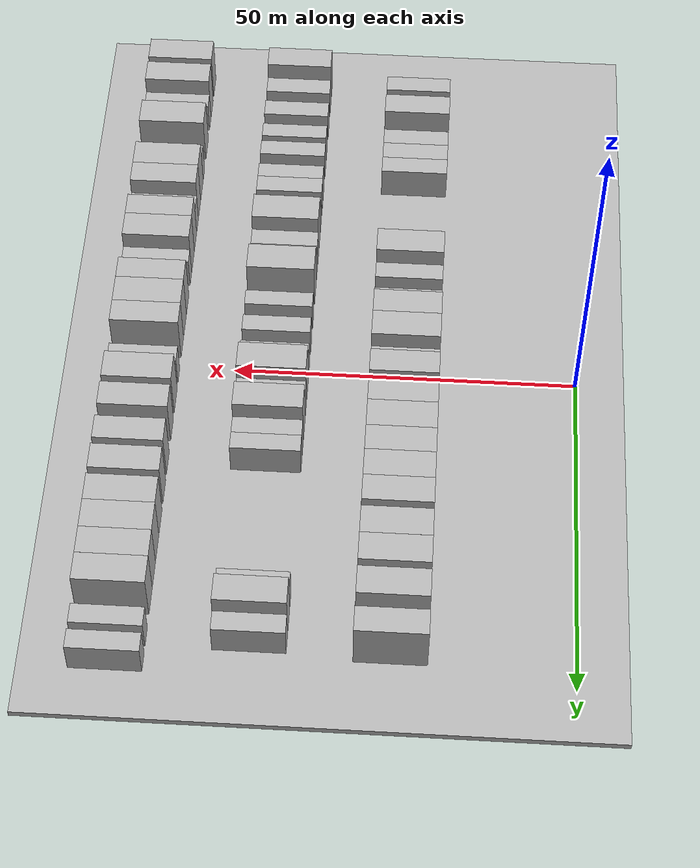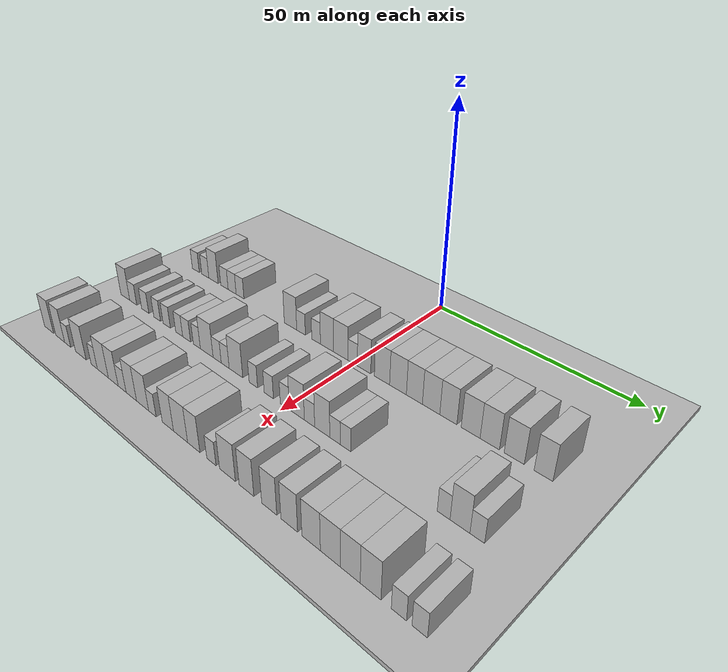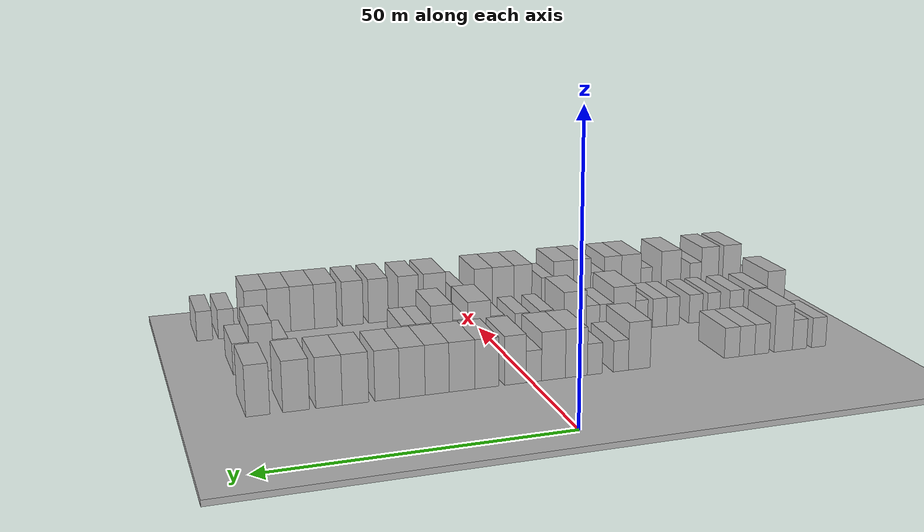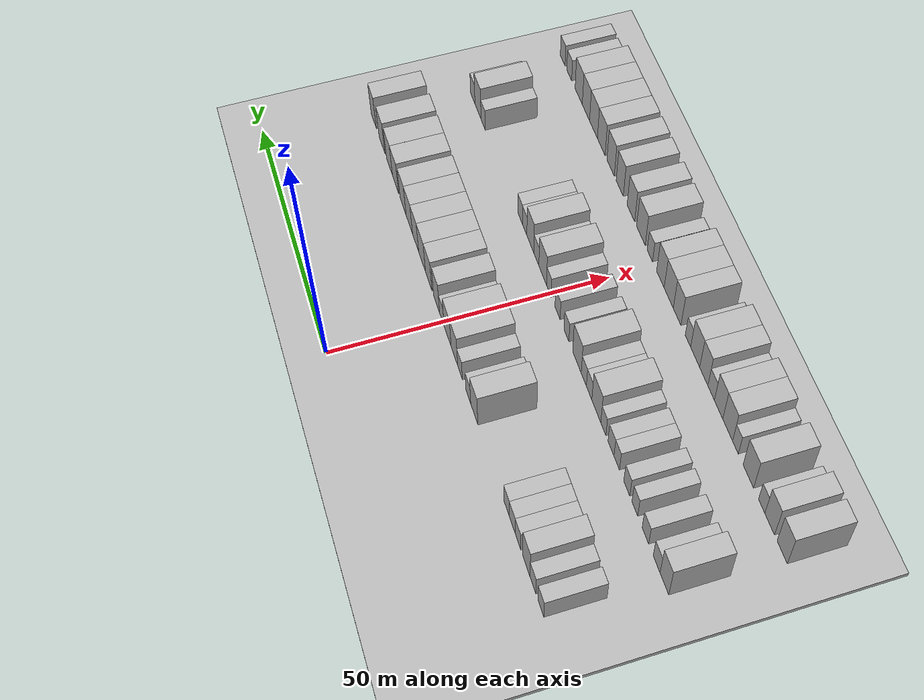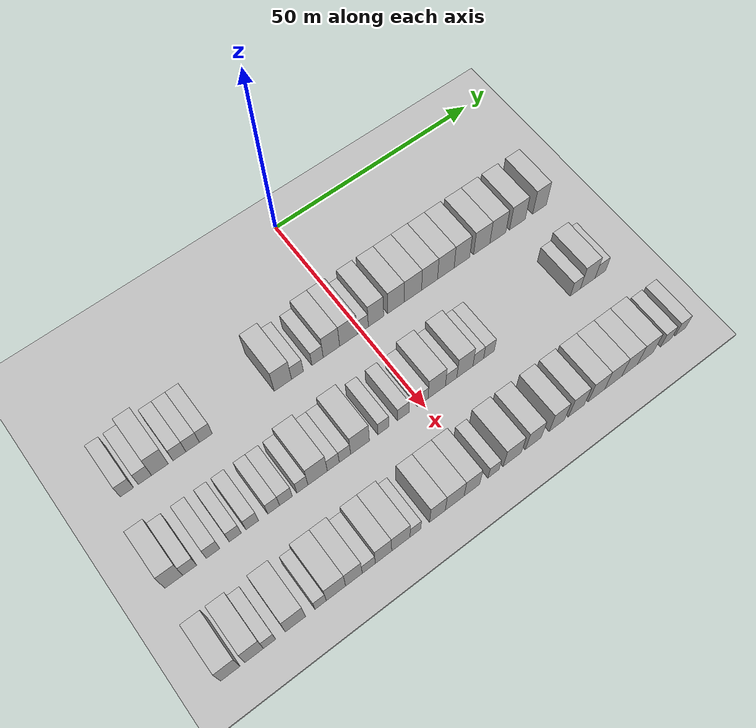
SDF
<sdf version="1.6">
 <world name="default">
  <include><name>ground_plane_1</name><uri>model://HANNAS_ground_plane</uri></include>
  <include>
   <name>ground_plane_2</name>
   <uri>model://HANNAS_ground_plane</uri>
   <pose>100 0 0  0 0 0</pose>
  </include>
  <model name="building_49">
   <static>1</static>
   <pose>25.0000 -53.5726 0 0.000000 0.000000 0.000000</pose>
   <link name="link">
    <pose>0 0 3.00 0 0 0</pose>
    <collision name="collision"><geometry><box><size>10.0000 2.8402 6.0000</size></box></geometry></collision>
    <visual name="visual">
     <cast_shadows>0</cast_shadows>
     <geometry><box><size>10.0000 2.8402 6.0000</size></box></geometry>
     <material>
      <script>
       <uri>model://HANNAS_wall/materials/scripts</uri>
       <uri>model://HANNAS_wall/materials/textures</uri>
       <name>vrc/HANNAS_wall</name>
      </script>
     </material>
    </visual>
   </link>
  </model>
  <model name="building_50">
   <static>1</static>
   <pose>25.0000 -49.7343 0 0.000000 0.000000 0.000000</pose>
   <link name="link">
    <pose>0 0 3.00 0 0 0</pose>
    <collision name="collision"><geometry><box><size>10.0000 2.8363 6.0000</size></box></geometry></collision>
    <visual name="visual">
     <cast_shadows>0</cast_shadows>
     <geometry><box><size>10.0000 2.8363 6.0000</size></box></geometry>
     <material>
      <script>
       <uri>model://HANNAS_wall/materials/scripts</uri>
       <uri>model://HANNAS_wall/materials/textures</uri>
       <name>vrc/HANNAS_wall</name>
      </script>
     </material>
    </visual>
   </link>
  </model>
  <model name="building_51">
   <static>1</static>
   <pose>25.0000 -46.4999 0 0.000000 0.000000 0.000000</pose>
   <link name="link">
    <pose>0 0 4.50 0 0 0</pose>
    <collision name="collision"><geometry><box><size>10.0000 3.6325 9.0000</size></box></geometry></collision>
    <visual name="visual">
     <cast_shadows>0</cast_shadows>
     <geometry><box><size>10.0000 3.6325 9.0000</size></box></geometry>
     <material>
      <script>
       <uri>model://HANNAS_wall/materials/scripts</uri>
       <uri>model://HANNAS_wall/materials/textures</uri>
       <name>vrc/HANNAS_wall</name>
      </script>
     </material>
    </visual>
   </link>
  </model>
  <model name="building_52">
   <static>1</static>
   <pose>25.0000 -42.2697 0 0.000000 0.000000 0.000000</pose>
   <link name="link">
    <pose>0 0 3.00 0 0 0</pose>
    <collision name="collision"><geometry><box><size>10.0000 2.8280 6.0000</size></box></geometry></collision>
    <visual name="visual">
     <cast_shadows>0</cast_shadows>
     <geometry><box><size>10.0000 2.8280 6.0000</size></box></geometry>
     <material>
      <script>
       <uri>model://HANNAS_wall/materials/scripts</uri>
       <uri>model://HANNAS_wall/materials/textures</uri>
       <name>vrc/HANNAS_wall</name>
      </script>
     </material>
    </visual>
   </link>
  </model>
  <model name="building_53">
   <static>1</static>
   <pose>25.0000 -39.3607 0 0.000000 0.000000 0.000000</pose>
   <link name="link">
    <pose>0 0 3.00 0 0 0</pose>
    <collision name="collision"><geometry><box><size>10.0000 2.9900 6.0000</size></box></geometry></collision>
    <visual name="visual">
     <cast_shadows>0</cast_shadows>
     <geometry><box><size>10.0000 2.9900 6.0000</size></box></geometry>
     <material>
      <script>
       <uri>model://HANNAS_wall/materials/scripts</uri>
       <uri>model://HANNAS_wall/materials/textures</uri>
       <name>vrc/HANNAS_wall</name>
      </script>
     </material>
    </visual>
   </link>
  </model>
  <model name="building_54">
   <static>1</static>
   <pose>25.0000 -36.4236 0 0.000000 0.000000 0.000000</pose>
   <link name="link">
    <pose>0 0 3.00 0 0 0</pose>
    <collision name="collision"><geometry><box><size>10.0000 2.8842 6.0000</size></box></geometry></collision>
    <visual name="visual">
     <cast_shadows>0</cast_shadows>
     <geometry><box><size>10.0000 2.8842 6.0000</size></box></geometry>
     <material>
      <script>
       <uri>model://HANNAS_wall/materials/scripts</uri>
       <uri>model://HANNAS_wall/materials/textures</uri>
       <name>vrc/HANNAS_wall</name>
      </script>
     </material>
    </visual>
   </link>
  </model>
  <model name="building_55">
   <static>1</static>
   <pose>25.0000 -18.9226 0 0.000000 0.000000 0.000000</pose>
   <link name="link">
    <pose>0 0 4.50 0 0 0</pose>
    <collision name="collision"><geometry><box><size>10.0000 4.0393 9.0000</size></box></geometry></collision>
    <visual name="visual">
     <cast_shadows>0</cast_shadows>
     <geometry><box><size>10.0000 4.0393 9.0000</size></box></geometry>
     <material>
      <script>
       <uri>model://HANNAS_wall/materials/scripts</uri>
       <uri>model://HANNAS_wall/materials/textures</uri>
       <name>vrc/HANNAS_wall</name>
      </script>
     </material>
    </visual>
   </link>
  </model>
  <model name="building_56">
   <static>1</static>
   <pose>25.0000 -15.5169 0 0.000000 0.000000 0.000000</pose>
   <link name="link">
    <pose>0 0 3.00 0 0 0</pose>
    <collision name="collision"><geometry><box><size>10.0000 2.7720 6.0000</size></box></geometry></collision>
    <visual name="visual">
     <cast_shadows>0</cast_shadows>
     <geometry><box><size>10.0000 2.7720 6.0000</size></box></geometry>
     <material>
      <script>
       <uri>model://HANNAS_wall/materials/scripts</uri>
       <uri>model://HANNAS_wall/materials/textures</uri>
       <name>vrc/HANNAS_wall</name>
      </script>
     </material>
    </visual>
   </link>
  </model>
  <model name="building_57">
   <static>1</static>
   <pose>25.0000 -10.7822 0 0.000000 0.000000 0.000000</pose>
   <link name="link">
    <pose>0 0 3.00 0 0 0</pose>
    <collision name="collision"><geometry><box><size>10.0000 2.6976 6.0000</size></box></geometry></collision>
    <visual name="visual">
     <cast_shadows>0</cast_shadows>
     <geometry><box><size>10.0000 2.6976 6.0000</size></box></geometry>
     <material>
      <script>
       <uri>model://HANNAS_wall/materials/scripts</uri>
       <uri>model://HANNAS_wall/materials/textures</uri>
       <name>vrc/HANNAS_wall</name>
      </script>
     </material>
    </visual>
   </link>
  </model>
  <model name="building_58">
   <static>1</static>
   <pose>25.0000 -7.4671 0 0.000000 0.000000 0.000000</pose>
   <link name="link">
    <pose>0 0 4.50 0 0 0</pose>
    <collision name="collision"><geometry><box><size>10.0000 3.9326 9.0000</size></box></geometry></collision>
    <visual name="visual">
     <cast_shadows>0</cast_shadows>
     <geometry><box><size>10.0000 3.9326 9.0000</size></box></geometry>
     <material>
      <script>
       <uri>model://HANNAS_wall/materials/scripts</uri>
       <uri>model://HANNAS_wall/materials/textures</uri>
       <name>vrc/HANNAS_wall</name>
      </script>
     </material>
    </visual>
   </link>
  </model>
  <model name="building_59">
   <static>1</static>
   <pose>25.0000 -3.3821 0 0.000000 0.000000 0.000000</pose>
   <link name="link">
    <pose>0 0 4.50 0 0 0</pose>
    <collision name="collision"><geometry><box><size>10.0000 4.2374 9.0000</size></box></geometry></collision>
    <visual name="visual">
     <cast_shadows>0</cast_shadows>
     <geometry><box><size>10.0000 4.2374 9.0000</size></box></geometry>
     <material>
      <script>
       <uri>model://HANNAS_wall/materials/scripts</uri>
       <uri>model://HANNAS_wall/materials/textures</uri>
       <name>vrc/HANNAS_wall</name>
      </script>
     </material>
    </visual>
   </link>
  </model>
  <model name="building_60">
   <static>1</static>
   <pose>25.0000 0.0920 0 0.000000 0.000000 0.000000</pose>
   <link name="link">
    <pose>0 0 3.00 0 0 0</pose>
    <collision name="collision"><geometry><box><size>10.0000 2.7109 6.0000</size></box></geometry></collision>
    <visual name="visual">
     <cast_shadows>0</cast_shadows>
     <geometry><box><size>10.0000 2.7109 6.0000</size></box></geometry>
     <material>
      <script>
       <uri>model://HANNAS_wall/materials/scripts</uri>
       <uri>model://HANNAS_wall/materials/textures</uri>
       <name>vrc/HANNAS_wall</name>
      </script>
     </material>
    </visual>
   </link>
  </model>
  <model name="building_61">
   <static>1</static>
   <pose>25.0000 3.3259 0 0.000000 0.000000 0.000000</pose>
   <link name="link">
    <pose>0 0 4.50 0 0 0</pose>
    <collision name="collision"><geometry><box><size>10.0000 3.7569 9.0000</size></box></geometry></collision>
    <visual name="visual">
     <cast_shadows>0</cast_shadows>
     <geometry><box><size>10.0000 3.7569 9.0000</size></box></geometry>
     <material>
      <script>
       <uri>model://HANNAS_wall/materials/scripts</uri>
       <uri>model://HANNAS_wall/materials/textures</uri>
       <name>vrc/HANNAS_wall</name>
      </script>
     </material>
    </visual>
   </link>
  </model>
  <model name="building_62">
   <static>1</static>
   <pose>25.0000 8.2512 0 0.000000 0.000000 0.000000</pose>
   <link name="link">
    <pose>0 0 4.50 0 0 0</pose>
    <collision name="collision"><geometry><box><size>10.0000 4.0938 9.0000</size></box></geometry></collision>
    <visual name="visual">
     <cast_shadows>0</cast_shadows>
     <geometry><box><size>10.0000 4.0938 9.0000</size></box></geometry>
     <material>
      <script>
       <uri>model://HANNAS_wall/materials/scripts</uri>
       <uri>model://HANNAS_wall/materials/textures</uri>
       <name>vrc/HANNAS_wall</name>
      </script>
     </material>
    </visual>
   </link>
  </model>
  <model name="building_63">
   <static>1</static>
   <pose>25.0000 12.4885 0 0.000000 0.000000 0.000000</pose>
   <link name="link">
    <pose>0 0 4.50 0 0 0</pose>
    <collision name="collision"><geometry><box><size>10.0000 4.3806 9.0000</size></box></geometry></collision>
    <visual name="visual">
     <cast_shadows>0</cast_shadows>
     <geometry><box><size>10.0000 4.3806 9.0000</size></box></geometry>
     <material>
      <script>
       <uri>model://HANNAS_wall/materials/scripts</uri>
       <uri>model://HANNAS_wall/materials/textures</uri>
       <name>vrc/HANNAS_wall</name>
      </script>
     </material>
    </visual>
   </link>
  </model>
  <model name="building_64">
   <static>1</static>
   <pose>25.0000 16.7042 0 0.000000 0.000000 0.000000</pose>
   <link name="link">
    <pose>0 0 4.50 0 0 0</pose>
    <collision name="collision"><geometry><box><size>10.0000 4.0509 9.0000</size></box></geometry></collision>
    <visual name="visual">
     <cast_shadows>0</cast_shadows>
     <geometry><box><size>10.0000 4.0509 9.0000</size></box></geometry>
     <material>
      <script>
       <uri>model://HANNAS_wall/materials/scripts</uri>
       <uri>model://HANNAS_wall/materials/textures</uri>
       <name>vrc/HANNAS_wall</name>
      </script>
     </material>
    </visual>
   </link>
  </model>
  <model name="building_65">
   <static>1</static>
   <pose>25.0000 20.8555 0 0.000000 0.000000 0.000000</pose>
   <link name="link">
    <pose>0 0 4.50 0 0 0</pose>
    <collision name="collision"><geometry><box><size>10.0000 4.2516 9.0000</size></box></geometry></collision>
    <visual name="visual">
     <cast_shadows>0</cast_shadows>
     <geometry><box><size>10.0000 4.2516 9.0000</size></box></geometry>
     <material>
      <script>
       <uri>model://HANNAS_wall/materials/scripts</uri>
       <uri>model://HANNAS_wall/materials/textures</uri>
       <name>vrc/HANNAS_wall</name>
      </script>
     </material>
    </visual>
   </link>
  </model>
  <model name="building_66">
   <static>1</static>
   <pose>25.0000 25.0057 0 0.000000 0.000000 0.000000</pose>
   <link name="link">
    <pose>0 0 4.50 0 0 0</pose>
    <collision name="collision"><geometry><box><size>10.0000 4.0488 9.0000</size></box></geometry></collision>
    <visual name="visual">
     <cast_shadows>0</cast_shadows>
     <geometry><box><size>10.0000 4.0488 9.0000</size></box></geometry>
     <material>
      <script>
       <uri>model://HANNAS_wall/materials/scripts</uri>
       <uri>model://HANNAS_wall/materials/textures</uri>
       <name>vrc/HANNAS_wall</name>
      </script>
     </material>
    </visual>
   </link>
  </model>
  <model name="building_67">
   <static>1</static>
   <pose>25.0000 30.1719 0 0.000000 0.000000 0.000000</pose>
   <link name="link">
    <pose>0 0 4.50 0 0 0</pose>
    <collision name="collision"><geometry><box><size>10.0000 4.2837 9.0000</size></box></geometry></collision>
    <visual name="visual">
     <cast_shadows>0</cast_shadows>
     <geometry><box><size>10.0000 4.2837 9.0000</size></box></geometry>
     <material>
      <script>
       <uri>model://HANNAS_wall/materials/scripts</uri>
       <uri>model://HANNAS_wall/materials/textures</uri>
       <name>vrc/HANNAS_wall</name>
      </script>
     </material>
    </visual>
   </link>
  </model>
  <model name="building_68">
   <static>1</static>
   <pose>25.0000 34.4357 0 0.000000 0.000000 0.000000</pose>
   <link name="link">
    <pose>0 0 4.50 0 0 0</pose>
    <collision name="collision"><geometry><box><size>10.0000 4.2438 9.0000</size></box></geometry></collision>
    <visual name="visual">
     <cast_shadows>0</cast_shadows>
     <geometry><box><size>10.0000 4.2438 9.0000</size></box></geometry>
     <material>
      <script>
       <uri>model://HANNAS_wall/materials/scripts</uri>
       <uri>model://HANNAS_wall/materials/textures</uri>
       <name>vrc/HANNAS_wall</name>
      </script>
     </material>
    </visual>
   </link>
  </model>
  <model name="building_69">
   <static>1</static>
   <pose>25.0000 39.6681 0 0.000000 0.000000 0.000000</pose>
   <link name="link">
    <pose>0 0 4.50 0 0 0</pose>
    <collision name="collision"><geometry><box><size>10.0000 4.2209 9.0000</size></box></geometry></collision>
    <visual name="visual">
     <cast_shadows>0</cast_shadows>
     <geometry><box><size>10.0000 4.2209 9.0000</size></box></geometry>
     <material>
      <script>
       <uri>model://HANNAS_wall/materials/scripts</uri>
       <uri>model://HANNAS_wall/materials/textures</uri>
       <name>vrc/HANNAS_wall</name>
      </script>
     </material>
    </visual>
   </link>
  </model>
  <model name="building_70">
   <static>1</static>
   <pose>25.0000 45.6589 0 0.000000 0.000000 0.000000</pose>
   <link name="link">
    <pose>0 0 4.50 0 0 0</pose>
    <collision name="collision"><geometry><box><size>10.0000 3.7607 9.0000</size></box></geometry></collision>
    <visual name="visual">
     <cast_shadows>0</cast_shadows>
     <geometry><box><size>10.0000 3.7607 9.0000</size></box></geometry>
     <material>
      <script>
       <uri>model://HANNAS_wall/materials/scripts</uri>
       <uri>model://HANNAS_wall/materials/textures</uri>
       <name>vrc/HANNAS_wall</name>
      </script>
     </material>
    </visual>
   </link>
  </model>
  <model name="building_162">
   <static>1</static>
   <pose>44.0000 -55.4919 0 0.000000 0.000000 0.000000</pose>
   <link name="link">
    <pose>0 0 4.50 0 0 0</pose>
    <collision name="collision"><geometry><box><size>10.0000 3.7176 9.0000</size></box></geometry></collision>
    <visual name="visual">
     <cast_shadows>0</cast_shadows>
     <geometry><box><size>10.0000 3.7176 9.0000</size></box></geometry>
     <material>
      <script>
       <uri>model://HANNAS_wall/materials/scripts</uri>
       <uri>model://HANNAS_wall/materials/textures</uri>
       <name>vrc/HANNAS_wall</name>
      </script>
     </material>
    </visual>
   </link>
  </model>
  <model name="building_163">
   <static>1</static>
   <pose>44.0000 -52.1662 0 0.000000 0.000000 0.000000</pose>
   <link name="link">
    <pose>0 0 3.00 0 0 0</pose>
    <collision name="collision"><geometry><box><size>10.0000 2.9338 6.0000</size></box></geometry></collision>
    <visual name="visual">
     <cast_shadows>0</cast_shadows>
     <geometry><box><size>10.0000 2.9338 6.0000</size></box></geometry>
     <material>
      <script>
       <uri>model://HANNAS_wall/materials/scripts</uri>
       <uri>model://HANNAS_wall/materials/textures</uri>
       <name>vrc/HANNAS_wall</name>
      </script>
     </material>
    </visual>
   </link>
  </model>
  <model name="building_164">
   <static>1</static>
   <pose>44.0000 -47.2561 0 0.000000 0.000000 0.000000</pose>
   <link name="link">
    <pose>0 0 3.00 0 0 0</pose>
    <collision name="collision"><geometry><box><size>10.0000 2.8863 6.0000</size></box></geometry></collision>
    <visual name="visual">
     <cast_shadows>0</cast_shadows>
     <geometry><box><size>10.0000 2.8863 6.0000</size></box></geometry>
     <material>
      <script>
       <uri>model://HANNAS_wall/materials/scripts</uri>
       <uri>model://HANNAS_wall/materials/textures</uri>
       <name>vrc/HANNAS_wall</name>
      </script>
     </material>
    </visual>
   </link>
  </model>
  <model name="building_165">
   <static>1</static>
   <pose>44.0000 -42.5142 0 0.000000 0.000000 0.000000</pose>
   <link name="link">
    <pose>0 0 3.00 0 0 0</pose>
    <collision name="collision"><geometry><box><size>10.0000 2.5975 6.0000</size></box></geometry></collision>
    <visual name="visual">
     <cast_shadows>0</cast_shadows>
     <geometry><box><size>10.0000 2.5975 6.0000</size></box></geometry>
     <material>
      <script>
       <uri>model://HANNAS_wall/materials/scripts</uri>
       <uri>model://HANNAS_wall/materials/textures</uri>
       <name>vrc/HANNAS_wall</name>
      </script>
     </material>
    </visual>
   </link>
  </model>
  <model name="building_166">
   <static>1</static>
   <pose>44.0000 -38.8365 0 0.000000 0.000000 0.000000</pose>
   <link name="link">
    <pose>0 0 3.00 0 0 0</pose>
    <collision name="collision"><geometry><box><size>10.0000 2.7579 6.0000</size></box></geometry></collision>
    <visual name="visual">
     <cast_shadows>0</cast_shadows>
     <geometry><box><size>10.0000 2.7579 6.0000</size></box></geometry>
     <material>
      <script>
       <uri>model://HANNAS_wall/materials/scripts</uri>
       <uri>model://HANNAS_wall/materials/textures</uri>
       <name>vrc/HANNAS_wall</name>
      </script>
     </material>
    </visual>
   </link>
  </model>
  <model name="building_167">
   <static>1</static>
   <pose>44.0000 -34.1677 0 0.000000 0.000000 0.000000</pose>
   <link name="link">
    <pose>0 0 3.00 0 0 0</pose>
    <collision name="collision"><geometry><box><size>10.0000 2.5796 6.0000</size></box></geometry></collision>
    <visual name="visual">
     <cast_shadows>0</cast_shadows>
     <geometry><box><size>10.0000 2.5796 6.0000</size></box></geometry>
     <material>
      <script>
       <uri>model://HANNAS_wall/materials/scripts</uri>
       <uri>model://HANNAS_wall/materials/textures</uri>
       <name>vrc/HANNAS_wall</name>
      </script>
     </material>
    </visual>
   </link>
  </model>
  <model name="building_168">
   <static>1</static>
   <pose>44.0000 -31.4537 0 0.000000 0.000000 0.000000</pose>
   <link name="link">
    <pose>0 0 3.00 0 0 0</pose>
    <collision name="collision"><geometry><box><size>10.0000 2.8485 6.0000</size></box></geometry></collision>
    <visual name="visual">
     <cast_shadows>0</cast_shadows>
     <geometry><box><size>10.0000 2.8485 6.0000</size></box></geometry>
     <material>
      <script>
       <uri>model://HANNAS_wall/materials/scripts</uri>
       <uri>model://HANNAS_wall/materials/textures</uri>
       <name>vrc/HANNAS_wall</name>
      </script>
     </material>
    </visual>
   </link>
  </model>
  <model name="building_169">
   <static>1</static>
   <pose>44.0000 -27.7889 0 0.000000 0.000000 0.000000</pose>
   <link name="link">
    <pose>0 0 3.00 0 0 0</pose>
    <collision name="collision"><geometry><box><size>10.0000 2.4812 6.0000</size></box></geometry></collision>
    <visual name="visual">
     <cast_shadows>0</cast_shadows>
     <geometry><box><size>10.0000 2.4812 6.0000</size></box></geometry>
     <material>
      <script>
       <uri>model://HANNAS_wall/materials/scripts</uri>
       <uri>model://HANNAS_wall/materials/textures</uri>
       <name>vrc/HANNAS_wall</name>
      </script>
     </material>
    </visual>
   </link>
  </model>
  <model name="building_170">
   <static>1</static>
   <pose>44.0000 -24.3627 0 0.000000 0.000000 0.000000</pose>
   <link name="link">
    <pose>0 0 4.50 0 0 0</pose>
    <collision name="collision"><geometry><box><size>10.0000 4.3710 9.0000</size></box></geometry></collision>
    <visual name="visual">
     <cast_shadows>0</cast_shadows>
     <geometry><box><size>10.0000 4.3710 9.0000</size></box></geometry>
     <material>
      <script>
       <uri>model://HANNAS_wall/materials/scripts</uri>
       <uri>model://HANNAS_wall/materials/textures</uri>
       <name>vrc/HANNAS_wall</name>
      </script>
     </material>
    </visual>
   </link>
  </model>
  <model name="building_171">
   <static>1</static>
   <pose>44.0000 -20.8142 0 0.000000 0.000000 0.000000</pose>
   <link name="link">
    <pose>0 0 3.00 0 0 0</pose>
    <collision name="collision"><geometry><box><size>10.0000 2.7261 6.0000</size></box></geometry></collision>
    <visual name="visual">
     <cast_shadows>0</cast_shadows>
     <geometry><box><size>10.0000 2.7261 6.0000</size></box></geometry>
     <material>
      <script>
       <uri>model://HANNAS_wall/materials/scripts</uri>
       <uri>model://HANNAS_wall/materials/textures</uri>
       <name>vrc/HANNAS_wall</name>
      </script>
     </material>
    </visual>
   </link>
  </model>
  <model name="building_172">
   <static>1</static>
   <pose>44.0000 -18.1505 0 0.000000 0.000000 0.000000</pose>
   <link name="link">
    <pose>0 0 3.00 0 0 0</pose>
    <collision name="collision"><geometry><box><size>10.0000 2.6012 6.0000</size></box></geometry></collision>
    <visual name="visual">
     <cast_shadows>0</cast_shadows>
     <geometry><box><size>10.0000 2.6012 6.0000</size></box></geometry>
     <material>
      <script>
       <uri>model://HANNAS_wall/materials/scripts</uri>
       <uri>model://HANNAS_wall/materials/textures</uri>
       <name>vrc/HANNAS_wall</name>
      </script>
     </material>
    </visual>
   </link>
  </model>
  <model name="building_173">
   <static>1</static>
   <pose>44.0000 -14.6765 0 0.000000 0.000000 0.000000</pose>
   <link name="link">
    <pose>0 0 4.50 0 0 0</pose>
    <collision name="collision"><geometry><box><size>10.0000 4.3469 9.0000</size></box></geometry></collision>
    <visual name="visual">
     <cast_shadows>0</cast_shadows>
     <geometry><box><size>10.0000 4.3469 9.0000</size></box></geometry>
     <material>
      <script>
       <uri>model://HANNAS_wall/materials/scripts</uri>
       <uri>model://HANNAS_wall/materials/textures</uri>
       <name>vrc/HANNAS_wall</name>
      </script>
     </material>
    </visual>
   </link>
  </model>
  <model name="building_174">
   <static>1</static>
   <pose>44.0000 -9.2085 0 0.000000 0.000000 0.000000</pose>
   <link name="link">
    <pose>0 0 3.00 0 0 0</pose>
    <collision name="collision"><geometry><box><size>10.0000 2.5890 6.0000</size></box></geometry></collision>
    <visual name="visual">
     <cast_shadows>0</cast_shadows>
     <geometry><box><size>10.0000 2.5890 6.0000</size></box></geometry>
     <material>
      <script>
       <uri>model://HANNAS_wall/materials/scripts</uri>
       <uri>model://HANNAS_wall/materials/textures</uri>
       <name>vrc/HANNAS_wall</name>
      </script>
     </material>
    </visual>
   </link>
  </model>
  <model name="building_175">
   <static>1</static>
   <pose>44.0000 -4.5421 0 0.000000 0.000000 0.000000</pose>
   <link name="link">
    <pose>0 0 3.00 0 0 0</pose>
    <collision name="collision"><geometry><box><size>10.0000 2.7438 6.0000</size></box></geometry></collision>
    <visual name="visual">
     <cast_shadows>0</cast_shadows>
     <geometry><box><size>10.0000 2.7438 6.0000</size></box></geometry>
     <material>
      <script>
       <uri>model://HANNAS_wall/materials/scripts</uri>
       <uri>model://HANNAS_wall/materials/textures</uri>
       <name>vrc/HANNAS_wall</name>
      </script>
     </material>
    </visual>
   </link>
  </model>
  <model name="building_176">
   <static>1</static>
   <pose>44.0000 0.1118 0 0.000000 0.000000 0.000000</pose>
   <link name="link">
    <pose>0 0 3.00 0 0 0</pose>
    <collision name="collision"><geometry><box><size>10.0000 2.5640 6.0000</size></box></geometry></collision>
    <visual name="visual">
     <cast_shadows>0</cast_shadows>
     <geometry><box><size>10.0000 2.5640 6.0000</size></box></geometry>
     <material>
      <script>
       <uri>model://HANNAS_wall/materials/scripts</uri>
       <uri>model://HANNAS_wall/materials/textures</uri>
       <name>vrc/HANNAS_wall</name>
      </script>
     </material>
    </visual>
   </link>
  </model>
  <model name="building_177">
   <static>1</static>
   <pose>44.0000 3.4968 0 0.000000 0.000000 0.000000</pose>
   <link name="link">
    <pose>0 0 4.50 0 0 0</pose>
    <collision name="collision"><geometry><box><size>10.0000 4.2059 9.0000</size></box></geometry></collision>
    <visual name="visual">
     <cast_shadows>0</cast_shadows>
     <geometry><box><size>10.0000 4.2059 9.0000</size></box></geometry>
     <material>
      <script>
       <uri>model://HANNAS_wall/materials/scripts</uri>
       <uri>model://HANNAS_wall/materials/textures</uri>
       <name>vrc/HANNAS_wall</name>
      </script>
     </material>
    </visual>
   </link>
  </model>
  <model name="building_178">
   <static>1</static>
   <pose>44.0000 6.9933 0 0.000000 0.000000 0.000000</pose>
   <link name="link">
    <pose>0 0 3.00 0 0 0</pose>
    <collision name="collision"><geometry><box><size>10.0000 2.7871 6.0000</size></box></geometry></collision>
    <visual name="visual">
     <cast_shadows>0</cast_shadows>
     <geometry><box><size>10.0000 2.7871 6.0000</size></box></geometry>
     <material>
      <script>
       <uri>model://HANNAS_wall/materials/scripts</uri>
       <uri>model://HANNAS_wall/materials/textures</uri>
       <name>vrc/HANNAS_wall</name>
      </script>
     </material>
    </visual>
   </link>
  </model>
  <model name="building_179">
   <static>1</static>
   <pose>44.0000 10.3758 0 0.000000 0.000000 0.000000</pose>
   <link name="link">
    <pose>0 0 4.50 0 0 0</pose>
    <collision name="collision"><geometry><box><size>10.0000 3.9779 9.0000</size></box></geometry></collision>
    <visual name="visual">
     <cast_shadows>0</cast_shadows>
     <geometry><box><size>10.0000 3.9779 9.0000</size></box></geometry>
     <material>
      <script>
       <uri>model://HANNAS_wall/materials/scripts</uri>
       <uri>model://HANNAS_wall/materials/textures</uri>
       <name>vrc/HANNAS_wall</name>
      </script>
     </material>
    </visual>
   </link>
  </model>
  <model name="building_180">
   <static>1</static>
   <pose>44.0000 13.6944 0 0.000000 0.000000 0.000000</pose>
   <link name="link">
    <pose>0 0 3.00 0 0 0</pose>
    <collision name="collision"><geometry><box><size>10.0000 2.6592 6.0000</size></box></geometry></collision>
    <visual name="visual">
     <cast_shadows>0</cast_shadows>
     <geometry><box><size>10.0000 2.6592 6.0000</size></box></geometry>
     <material>
      <script>
       <uri>model://HANNAS_wall/materials/scripts</uri>
       <uri>model://HANNAS_wall/materials/textures</uri>
       <name>vrc/HANNAS_wall</name>
      </script>
     </material>
    </visual>
   </link>
  </model>
  <model name="building_181">
   <static>1</static>
   <pose>44.0000 16.3682 0 0.000000 0.000000 0.000000</pose>
   <link name="link">
    <pose>0 0 3.00 0 0 0</pose>
    <collision name="collision"><geometry><box><size>10.0000 2.6884 6.0000</size></box></geometry></collision>
    <visual name="visual">
     <cast_shadows>0</cast_shadows>
     <geometry><box><size>10.0000 2.6884 6.0000</size></box></geometry>
     <material>
      <script>
       <uri>model://HANNAS_wall/materials/scripts</uri>
       <uri>model://HANNAS_wall/materials/textures</uri>
       <name>vrc/HANNAS_wall</name>
      </script>
     </material>
    </visual>
   </link>
  </model>
  <model name="building_182">
   <static>1</static>
   <pose>44.0000 38.6807 0 0.000000 0.000000 0.000000</pose>
   <link name="link">
    <pose>0 0 3.00 0 0 0</pose>
    <collision name="collision"><geometry><box><size>10.0000 2.6455 6.0000</size></box></geometry></collision>
    <visual name="visual">
     <cast_shadows>0</cast_shadows>
     <geometry><box><size>10.0000 2.6455 6.0000</size></box></geometry>
     <material>
      <script>
       <uri>model://HANNAS_wall/materials/scripts</uri>
       <uri>model://HANNAS_wall/materials/textures</uri>
       <name>vrc/HANNAS_wall</name>
      </script>
     </material>
    </visual>
   </link>
  </model>
  <model name="building_183">
   <static>1</static>
   <pose>44.0000 41.9879 0 0.000000 0.000000 0.000000</pose>
   <link name="link">
    <pose>0 0 4.50 0 0 0</pose>
    <collision name="collision"><geometry><box><size>10.0000 3.9690 9.0000</size></box></geometry></collision>
    <visual name="visual">
     <cast_shadows>0</cast_shadows>
     <geometry><box><size>10.0000 3.9690 9.0000</size></box></geometry>
     <material>
      <script>
       <uri>model://HANNAS_wall/materials/scripts</uri>
       <uri>model://HANNAS_wall/materials/textures</uri>
       <name>vrc/HANNAS_wall</name>
      </script>
     </material>
    </visual>
   </link>
  </model>
  <model name="building_184">
   <static>1</static>
   <pose>44.0000 45.3919 0 0.000000 0.000000 0.000000</pose>
   <link name="link">
    <pose>0 0 3.00 0 0 0</pose>
    <collision name="collision"><geometry><box><size>10.0000 2.8391 6.0000</size></box></geometry></collision>
    <visual name="visual">
     <cast_shadows>0</cast_shadows>
     <geometry><box><size>10.0000 2.8391 6.0000</size></box></geometry>
     <material>
      <script>
       <uri>model://HANNAS_wall/materials/scripts</uri>
       <uri>model://HANNAS_wall/materials/textures</uri>
       <name>vrc/HANNAS_wall</name>
      </script>
     </material>
    </visual>
   </link>
  </model>
  <model name="building_279">
   <static>1</static>
   <pose>63.0000 -56.1655 0 0.000000 0.000000 0.000000</pose>
   <link name="link">
    <pose>0 0 4.50 0 0 0</pose>
    <collision name="collision"><geometry><box><size>10.0000 3.9669 9.0000</size></box></geometry></collision>
    <visual name="visual">
     <cast_shadows>0</cast_shadows>
     <geometry><box><size>10.0000 3.9669 9.0000</size></box></geometry>
     <material>
      <script>
       <uri>model://HANNAS_wall/materials/scripts</uri>
       <uri>model://HANNAS_wall/materials/textures</uri>
       <name>vrc/HANNAS_wall</name>
      </script>
     </material>
    </visual>
   </link>
  </model>
  <model name="building_280">
   <static>1</static>
   <pose>63.0000 -51.2768 0 0.000000 0.000000 0.000000</pose>
   <link name="link">
    <pose>0 0 4.50 0 0 0</pose>
    <collision name="collision"><geometry><box><size>10.0000 3.8105 9.0000</size></box></geometry></collision>
    <visual name="visual">
     <cast_shadows>0</cast_shadows>
     <geometry><box><size>10.0000 3.8105 9.0000</size></box></geometry>
     <material>
      <script>
       <uri>model://HANNAS_wall/materials/scripts</uri>
       <uri>model://HANNAS_wall/materials/textures</uri>
       <name>vrc/HANNAS_wall</name>
      </script>
     </material>
    </visual>
   </link>
  </model>
  <model name="building_281">
   <static>1</static>
   <pose>63.0000 -48.0995 0 0.000000 0.000000 0.000000</pose>
   <link name="link">
    <pose>0 0 3.00 0 0 0</pose>
    <collision name="collision"><geometry><box><size>10.0000 2.5440 6.0000</size></box></geometry></collision>
    <visual name="visual">
     <cast_shadows>0</cast_shadows>
     <geometry><box><size>10.0000 2.5440 6.0000</size></box></geometry>
     <material>
      <script>
       <uri>model://HANNAS_wall/materials/scripts</uri>
       <uri>model://HANNAS_wall/materials/textures</uri>
       <name>vrc/HANNAS_wall</name>
      </script>
     </material>
    </visual>
   </link>
  </model>
  <model name="building_282">
   <static>1</static>
   <pose>63.0000 -42.6818 0 0.000000 0.000000 0.000000</pose>
   <link name="link">
    <pose>0 0 4.50 0 0 0</pose>
    <collision name="collision"><geometry><box><size>10.0000 4.2915 9.0000</size></box></geometry></collision>
    <visual name="visual">
     <cast_shadows>0</cast_shadows>
     <geometry><box><size>10.0000 4.2915 9.0000</size></box></geometry>
     <material>
      <script>
       <uri>model://HANNAS_wall/materials/scripts</uri>
       <uri>model://HANNAS_wall/materials/textures</uri>
       <name>vrc/HANNAS_wall</name>
      </script>
     </material>
    </visual>
   </link>
  </model>
  <model name="building_283">
   <static>1</static>
   <pose>63.0000 -37.3230 0 0.000000 0.000000 0.000000</pose>
   <link name="link">
    <pose>0 0 3.00 0 0 0</pose>
    <collision name="collision"><geometry><box><size>10.0000 2.4261 6.0000</size></box></geometry></collision>
    <visual name="visual">
     <cast_shadows>0</cast_shadows>
     <geometry><box><size>10.0000 2.4261 6.0000</size></box></geometry>
     <material>
      <script>
       <uri>model://HANNAS_wall/materials/scripts</uri>
       <uri>model://HANNAS_wall/materials/textures</uri>
       <name>vrc/HANNAS_wall</name>
      </script>
     </material>
    </visual>
   </link>
  </model>
  <model name="building_284">
   <static>1</static>
   <pose>63.0000 -34.0149 0 0.000000 0.000000 0.000000</pose>
   <link name="link">
    <pose>0 0 4.50 0 0 0</pose>
    <collision name="collision"><geometry><box><size>10.0000 4.1902 9.0000</size></box></geometry></collision>
    <visual name="visual">
     <cast_shadows>0</cast_shadows>
     <geometry><box><size>10.0000 4.1902 9.0000</size></box></geometry>
     <material>
      <script>
       <uri>model://HANNAS_wall/materials/scripts</uri>
       <uri>model://HANNAS_wall/materials/textures</uri>
       <name>vrc/HANNAS_wall</name>
      </script>
     </material>
    </visual>
   </link>
  </model>
  <model name="building_285">
   <static>1</static>
   <pose>63.0000 -30.1036 0 0.000000 0.000000 0.000000</pose>
   <link name="link">
    <pose>0 0 4.50 0 0 0</pose>
    <collision name="collision"><geometry><box><size>10.0000 3.6323 9.0000</size></box></geometry></collision>
    <visual name="visual">
     <cast_shadows>0</cast_shadows>
     <geometry><box><size>10.0000 3.6323 9.0000</size></box></geometry>
     <material>
      <script>
       <uri>model://HANNAS_wall/materials/scripts</uri>
       <uri>model://HANNAS_wall/materials/textures</uri>
       <name>vrc/HANNAS_wall</name>
      </script>
     </material>
    </visual>
   </link>
  </model>
  <model name="building_286">
   <static>1</static>
   <pose>63.0000 -26.8516 0 0.000000 0.000000 0.000000</pose>
   <link name="link">
    <pose>0 0 3.00 0 0 0</pose>
    <collision name="collision"><geometry><box><size>10.0000 2.8717 6.0000</size></box></geometry></collision>
    <visual name="visual">
     <cast_shadows>0</cast_shadows>
     <geometry><box><size>10.0000 2.8717 6.0000</size></box></geometry>
     <material>
      <script>
       <uri>model://HANNAS_wall/materials/scripts</uri>
       <uri>model://HANNAS_wall/materials/textures</uri>
       <name>vrc/HANNAS_wall</name>
      </script>
     </material>
    </visual>
   </link>
  </model>
  <model name="building_287">
   <static>1</static>
   <pose>63.0000 -23.5947 0 0.000000 0.000000 0.000000</pose>
   <link name="link">
    <pose>0 0 4.50 0 0 0</pose>
    <collision name="collision"><geometry><box><size>10.0000 3.6421 9.0000</size></box></geometry></collision>
    <visual name="visual">
     <cast_shadows>0</cast_shadows>
     <geometry><box><size>10.0000 3.6421 9.0000</size></box></geometry>
     <material>
      <script>
       <uri>model://HANNAS_wall/materials/scripts</uri>
       <uri>model://HANNAS_wall/materials/textures</uri>
       <name>vrc/HANNAS_wall</name>
      </script>
     </material>
    </visual>
   </link>
  </model>
  <model name="building_288">
   <static>1</static>
   <pose>63.0000 -19.7111 0 0.000000 0.000000 0.000000</pose>
   <link name="link">
    <pose>0 0 4.50 0 0 0</pose>
    <collision name="collision"><geometry><box><size>10.0000 4.1252 9.0000</size></box></geometry></collision>
    <visual name="visual">
     <cast_shadows>0</cast_shadows>
     <geometry><box><size>10.0000 4.1252 9.0000</size></box></geometry>
     <material>
      <script>
       <uri>model://HANNAS_wall/materials/scripts</uri>
       <uri>model://HANNAS_wall/materials/textures</uri>
       <name>vrc/HANNAS_wall</name>
      </script>
     </material>
    </visual>
   </link>
  </model>
  <model name="building_289">
   <static>1</static>
   <pose>63.0000 -16.4105 0 0.000000 0.000000 0.000000</pose>
   <link name="link">
    <pose>0 0 3.00 0 0 0</pose>
    <collision name="collision"><geometry><box><size>10.0000 2.4761 6.0000</size></box></geometry></collision>
    <visual name="visual">
     <cast_shadows>0</cast_shadows>
     <geometry><box><size>10.0000 2.4761 6.0000</size></box></geometry>
     <material>
      <script>
       <uri>model://HANNAS_wall/materials/scripts</uri>
       <uri>model://HANNAS_wall/materials/textures</uri>
       <name>vrc/HANNAS_wall</name>
      </script>
     </material>
    </visual>
   </link>
  </model>
  <model name="building_290">
   <static>1</static>
   <pose>63.0000 -11.3705 0 0.000000 0.000000 0.000000</pose>
   <link name="link">
    <pose>0 0 4.50 0 0 0</pose>
    <collision name="collision"><geometry><box><size>10.0000 3.6038 9.0000</size></box></geometry></collision>
    <visual name="visual">
     <cast_shadows>0</cast_shadows>
     <geometry><box><size>10.0000 3.6038 9.0000</size></box></geometry>
     <material>
      <script>
       <uri>model://HANNAS_wall/materials/scripts</uri>
       <uri>model://HANNAS_wall/materials/textures</uri>
       <name>vrc/HANNAS_wall</name>
      </script>
     </material>
    </visual>
   </link>
  </model>
  <model name="building_291">
   <static>1</static>
   <pose>63.0000 -7.3855 0 0.000000 0.000000 0.000000</pose>
   <link name="link">
    <pose>0 0 4.50 0 0 0</pose>
    <collision name="collision"><geometry><box><size>10.0000 4.3661 9.0000</size></box></geometry></collision>
    <visual name="visual">
     <cast_shadows>0</cast_shadows>
     <geometry><box><size>10.0000 4.3661 9.0000</size></box></geometry>
     <material>
      <script>
       <uri>model://HANNAS_wall/materials/scripts</uri>
       <uri>model://HANNAS_wall/materials/textures</uri>
       <name>vrc/HANNAS_wall</name>
      </script>
     </material>
    </visual>
   </link>
  </model>
  <model name="building_292">
   <static>1</static>
   <pose>63.0000 -3.3674 0 0.000000 0.000000 0.000000</pose>
   <link name="link">
    <pose>0 0 4.50 0 0 0</pose>
    <collision name="collision"><geometry><box><size>10.0000 3.6702 9.0000</size></box></geometry></collision>
    <visual name="visual">
     <cast_shadows>0</cast_shadows>
     <geometry><box><size>10.0000 3.6702 9.0000</size></box></geometry>
     <material>
      <script>
       <uri>model://HANNAS_wall/materials/scripts</uri>
       <uri>model://HANNAS_wall/materials/textures</uri>
       <name>vrc/HANNAS_wall</name>
      </script>
     </material>
    </visual>
   </link>
  </model>
  <model name="building_293">
   <static>1</static>
   <pose>63.0000 1.7840 0 0.000000 0.000000 0.000000</pose>
   <link name="link">
    <pose>0 0 3.00 0 0 0</pose>
    <collision name="collision"><geometry><box><size>10.0000 2.6325 6.0000</size></box></geometry></collision>
    <visual name="visual">
     <cast_shadows>0</cast_shadows>
     <geometry><box><size>10.0000 2.6325 6.0000</size></box></geometry>
     <material>
      <script>
       <uri>model://HANNAS_wall/materials/scripts</uri>
       <uri>model://HANNAS_wall/materials/textures</uri>
       <name>vrc/HANNAS_wall</name>
      </script>
     </material>
    </visual>
   </link>
  </model>
  <model name="building_294">
   <static>1</static>
   <pose>63.0000 6.2800 0 0.000000 0.000000 0.000000</pose>
   <link name="link">
    <pose>0 0 4.50 0 0 0</pose>
    <collision name="collision"><geometry><box><size>10.0000 4.3596 9.0000</size></box></geometry></collision>
    <visual name="visual">
     <cast_shadows>0</cast_shadows>
     <geometry><box><size>10.0000 4.3596 9.0000</size></box></geometry>
     <material>
      <script>
       <uri>model://HANNAS_wall/materials/scripts</uri>
       <uri>model://HANNAS_wall/materials/textures</uri>
       <name>vrc/HANNAS_wall</name>
      </script>
     </material>
    </visual>
   </link>
  </model>
  <model name="building_295">
   <static>1</static>
   <pose>63.0000 11.3974 0 0.000000 0.000000 0.000000</pose>
   <link name="link">
    <pose>0 0 4.50 0 0 0</pose>
    <collision name="collision"><geometry><box><size>10.0000 3.8751 9.0000</size></box></geometry></collision>
    <visual name="visual">
     <cast_shadows>0</cast_shadows>
     <geometry><box><size>10.0000 3.8751 9.0000</size></box></geometry>
     <material>
      <script>
       <uri>model://HANNAS_wall/materials/scripts</uri>
       <uri>model://HANNAS_wall/materials/textures</uri>
       <name>vrc/HANNAS_wall</name>
      </script>
     </material>
    </visual>
   </link>
  </model>
  <model name="building_296">
   <static>1</static>
   <pose>63.0000 17.2183 0 0.000000 0.000000 0.000000</pose>
   <link name="link">
    <pose>0 0 4.50 0 0 0</pose>
    <collision name="collision"><geometry><box><size>10.0000 3.7668 9.0000</size></box></geometry></collision>
    <visual name="visual">
     <cast_shadows>0</cast_shadows>
     <geometry><box><size>10.0000 3.7668 9.0000</size></box></geometry>
     <material>
      <script>
       <uri>model://HANNAS_wall/materials/scripts</uri>
       <uri>model://HANNAS_wall/materials/textures</uri>
       <name>vrc/HANNAS_wall</name>
      </script>
     </material>
    </visual>
   </link>
  </model>
  <model name="building_297">
   <static>1</static>
   <pose>63.0000 22.0882 0 0.000000 0.000000 0.000000</pose>
   <link name="link">
    <pose>0 0 4.50 0 0 0</pose>
    <collision name="collision"><geometry><box><size>10.0000 3.9730 9.0000</size></box></geometry></collision>
    <visual name="visual">
     <cast_shadows>0</cast_shadows>
     <geometry><box><size>10.0000 3.9730 9.0000</size></box></geometry>
     <material>
      <script>
       <uri>model://HANNAS_wall/materials/scripts</uri>
       <uri>model://HANNAS_wall/materials/textures</uri>
       <name>vrc/HANNAS_wall</name>
      </script>
     </material>
    </visual>
   </link>
  </model>
  <model name="building_298">
   <static>1</static>
   <pose>63.0000 27.1723 0 0.000000 0.000000 0.000000</pose>
   <link name="link">
    <pose>0 0 4.50 0 0 0</pose>
    <collision name="collision"><geometry><box><size>10.0000 4.1951 9.0000</size></box></geometry></collision>
    <visual name="visual">
     <cast_shadows>0</cast_shadows>
     <geometry><box><size>10.0000 4.1951 9.0000</size></box></geometry>
     <material>
      <script>
       <uri>model://HANNAS_wall/materials/scripts</uri>
       <uri>model://HANNAS_wall/materials/textures</uri>
       <name>vrc/HANNAS_wall</name>
      </script>
     </material>
    </visual>
   </link>
  </model>
  <model name="building_299">
   <static>1</static>
   <pose>63.0000 31.4649 0 0.000000 0.000000 0.000000</pose>
   <link name="link">
    <pose>0 0 4.50 0 0 0</pose>
    <collision name="collision"><geometry><box><size>10.0000 4.3902 9.0000</size></box></geometry></collision>
    <visual name="visual">
     <cast_shadows>0</cast_shadows>
     <geometry><box><size>10.0000 4.3902 9.0000</size></box></geometry>
     <material>
      <script>
       <uri>model://HANNAS_wall/materials/scripts</uri>
       <uri>model://HANNAS_wall/materials/textures</uri>
       <name>vrc/HANNAS_wall</name>
      </script>
     </material>
    </visual>
   </link>
  </model>
  <model name="building_300">
   <static>1</static>
   <pose>63.0000 35.7193 0 0.000000 0.000000 0.000000</pose>
   <link name="link">
    <pose>0 0 4.50 0 0 0</pose>
    <collision name="collision"><geometry><box><size>10.0000 4.1186 9.0000</size></box></geometry></collision>
    <visual name="visual">
     <cast_shadows>0</cast_shadows>
     <geometry><box><size>10.0000 4.1186 9.0000</size></box></geometry>
     <material>
      <script>
       <uri>model://HANNAS_wall/materials/scripts</uri>
       <uri>model://HANNAS_wall/materials/textures</uri>
       <name>vrc/HANNAS_wall</name>
      </script>
     </material>
    </visual>
   </link>
  </model>
  <model name="building_301">
   <static>1</static>
   <pose>63.0000 39.8530 0 0.000000 0.000000 0.000000</pose>
   <link name="link">
    <pose>0 0 4.50 0 0 0</pose>
    <collision name="collision"><geometry><box><size>10.0000 4.1486 9.0000</size></box></geometry></collision>
    <visual name="visual">
     <cast_shadows>0</cast_shadows>
     <geometry><box><size>10.0000 4.1486 9.0000</size></box></geometry>
     <material>
      <script>
       <uri>model://HANNAS_wall/materials/scripts</uri>
       <uri>model://HANNAS_wall/materials/textures</uri>
       <name>vrc/HANNAS_wall</name>
      </script>
     </material>
    </visual>
   </link>
  </model>
  <model name="building_302">
   <static>1</static>
   <pose>63.0000 45.3695 0 0.000000 0.000000 0.000000</pose>
   <link name="link">
    <pose>0 0 3.00 0 0 0</pose>
    <collision name="collision"><geometry><box><size>10.0000 2.8843 6.0000</size></box></geometry></collision>
    <visual name="visual">
     <cast_shadows>0</cast_shadows>
     <geometry><box><size>10.0000 2.8843 6.0000</size></box></geometry>
     <material>
      <script>
       <uri>model://HANNAS_wall/materials/scripts</uri>
       <uri>model://HANNAS_wall/materials/textures</uri>
       <name>vrc/HANNAS_wall</name>
      </script>
     </material>
    </visual>
   </link>
  </model>
  <model name="building_303">
   <static>1</static>
   <pose>63.0000 49.2236 0 0.000000 0.000000 0.000000</pose>
   <link name="link">
    <pose>0 0 3.00 0 0 0</pose>
    <collision name="collision"><geometry><box><size>10.0000 2.8239 6.0000</size></box></geometry></collision>
    <visual name="visual">
     <cast_shadows>0</cast_shadows>
     <geometry><box><size>10.0000 2.8239 6.0000</size></box></geometry>
     <material>
      <script>
       <uri>model://HANNAS_wall/materials/scripts</uri>
       <uri>model://HANNAS_wall/materials/textures</uri>
       <name>vrc/HANNAS_wall</name>
      </script>
     </material>
    </visual>
   </link>
  </model>
 </world>
</sdf>
